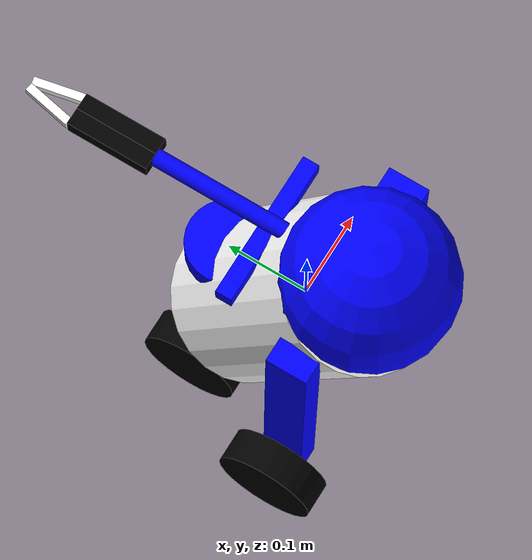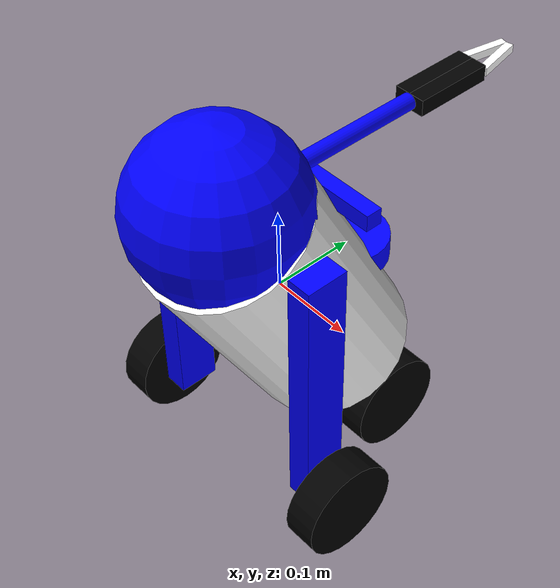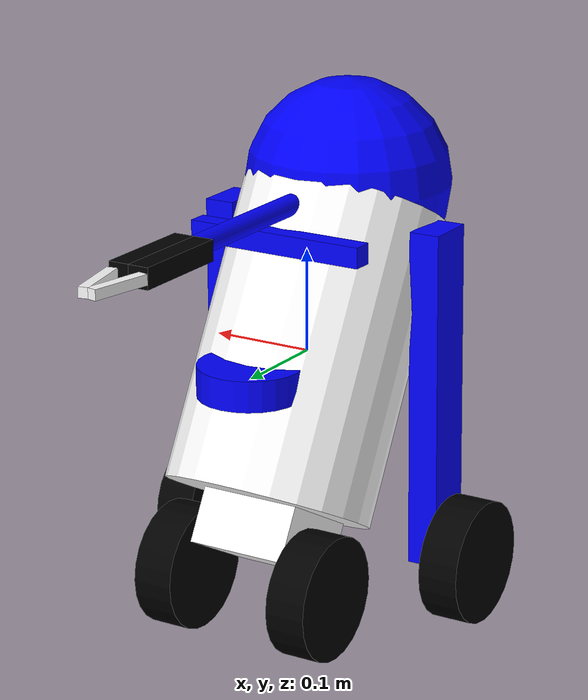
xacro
<?xml version="1.0"?>
<robot xmlns:xacro="http://www.ros.org/wiki/xacro" name="r2d2">

  <!-- Parametrização -->
  <xacro:property name="cylinder_radius" value="0.1"/>
  <xacro:property name="cylinder_length" value="0.3"/>
  <xacro:property name="base_length" value="0.33"/>
  <xacro:property name="base_width"  value="0.05"/>
  <xacro:property name="base_height" value="0.03"/>
  <xacro:property name="sphere_radius" value="0.1"/>
  <xacro:property name="wheel_radius" value="0.06"/>
  <xacro:property name="wheel_length" value="0.04"/>

  <!-- Materiais -->
  <material name="blue">
    <color rgba="0 0 1 1"/>
  </material>

  <material name="white">
    <color rgba="1 1 1 1"/>
  </material>

  <material name="black">
    <color rgba="0 0 0 1"/>
  </material>

  <!-- Definição de algumas propriedades inerciais -->
  <xacro:macro name="box_inertia" params="m w h d">
    <inertial>
      <origin xyz="0 0 0" rpy="${pi/2} 0 ${pi/2}"/>
      <mass value="${m}"/>
      <inertia ixx="${(m/12) * (h*h + d*d)}" ixy="0.0" ixz="0.0" iyy="${(m/12) * (w*w + d*d)}" iyz="0.0" izz="${(m/12) * (w*w + h*h)}"/>
    </inertial>
  </xacro:macro>

  <xacro:macro name="cylinder_inertia" params="m r h">
    <inertial>
      <origin xyz="0 0 0" rpy="${pi/2} 0 0" />
      <mass value="${m}"/>
      <inertia ixx="${(m/12) * (3*r*r + h*h)}" ixy = "0" ixz = "0" iyy="${(m/12) * (3*r*r + h*h)}" iyz = "0" izz="${(m/2) * (r*r)}"/>
    </inertial>
  </xacro:macro>

  <xacro:macro name="sphere_inertia" params="m r">
    <inertial>
      <mass value="${m}"/>
      <inertia ixx="${(2/5) * m * (r*r)}" ixy="0.0" ixz="0.0" iyy="${(2/5) * m * (r*r)}" iyz="0.0" izz="${(2/5) * m * (r*r)}"/>
    </inertial>
  </xacro:macro>

  <!-- Link base -->
  <link name="base_link">
    <visual>
      <geometry>
        <cylinder radius="${cylinder_radius}" length="${cylinder_length}"/>
      </geometry>
      <origin xyz="0 0 0" rpy="0.5 0 0"/>
      <material name="white"/>
    </visual>
    <collision>
      <geometry>
        <cylinder radius="${cylinder_radius}" length="${cylinder_length}"/>
      </geometry>
      <origin xyz="0 0 0" rpy="0.5 0 0"/>
    </collision>

    <xacro:cylinder_inertia m="10" r="${cylinder_radius}" h="${cylinder_length}"/>

  </link>

  <!-- Função para criar pernas -->
  <xacro:macro name="leg_link" params="name pos">
    <link name="${name}">
      <visual>
        <geometry>
          <box size="${base_length} ${base_width} ${base_height}"/>
        </geometry>
        <origin xyz="0 0 0" rpy="0 1.58 0"/>
        <material name="blue"/>
      </visual>
      <collision>
        <geometry>
          <box size="${base_length} ${base_width} ${base_height}"/>
        </geometry>
          <origin xyz="0 0 0" rpy="0 1.58 0"/>
      </collision>

      <xacro:box_inertia m="1" w="${base_width}" d="${base_length}" h="${base_height}"/>

    </link>

    <joint name="base_to_${name}" type="fixed">
      <parent link="base_link"/>
      <child link="${name}"/>
      <origin xyz="${pos}" />
    </joint>
  </xacro:macro>

  <xacro:leg_link name="right_leg" pos="0.113 -0.05 -0.04"/>
  <xacro:leg_link name="left_leg" pos="-0.113 -0.05 -0.04"/>

  <!-- Cabeça -->
  <link name="head">
    <visual>
      <geometry>
        <sphere radius="${sphere_radius}"/>
      </geometry>
      <origin xyz="0.0 0.0 0.01" rpy="0 0 0"/>
      <material name="blue"/>
    </visual>
    <collision>
      <geometry>
        <sphere radius="${sphere_radius}"/>
      </geometry>
      <origin xyz="0.0 0.0 0.01" rpy="0 0 0"/>
    </collision>

    <xacro:sphere_inertia m="2" r="${sphere_radius}"/>

  </link>
  <joint name="base_to_head" type="fixed">
    <parent link="base_link"/>
    <child link="head"/>
    <axis xyz="0 0 1"/>
    <origin xyz="0.0 -0.0765 0.14"/>
  </joint>

  <!-- Base inferior -->
  <link name="base_bottom">
    <visual>
      <geometry>
        <box size="0.1 0.1 0.06"/>
      </geometry>
      <origin xyz="0 0 0" rpy="0.5 0 0"/>
      <material name="white"/>
    </visual>
    <collision>
      <geometry>
        <box size="0.1 0.1 0.06"/>
      </geometry>
      <origin xyz="0 0 0" rpy="0.5 0 0"/>
    </collision>

    <xacro:box_inertia m="10" w="0.1" h="0.1" d="0.06"/>

  </link>
  <joint name="base_to_base_bottom" type="fixed">
    <parent link="base_link"/>
    <child link="base_bottom"/>
    <origin xyz="0 0.07 -0.16"/>
  </joint>

  <!-- Função para rodas -->
  <xacro:macro name="wheel" params="name parent_link pos type">
    <link name="${name}">
      <visual>
        <origin xyz="0 0 0" rpy="0 ${pi/2} 0"/>
        <geometry>
          <cylinder radius="${wheel_radius}" length="${wheel_length}"/>
        </geometry>
        <material name="black"/>
      </visual>

      <collision>
        <origin xyz="0 0 0" rpy="0 ${pi/2} 0"/>
        <geometry>
          <cylinder radius="${wheel_radius}" length="${wheel_length}"/>
        </geometry>
      </collision>

      <xacro:cylinder_inertia m="2.5" r="${wheel_radius}" h="${wheel_length}"/>

    </link>
    <joint name="${parent_link}_to_${name}" type="${type}">
      <parent link="${parent_link}"/>
      <child link="${name}"/>
      <origin xyz="${pos}"/>
      <axis xyz="-1 0 0"/>
      <dynamics damping="0.2"/>
    </joint>

  </xacro:macro>

  <xacro:wheel name="wheel_front_left" parent_link="base_link" pos="-0.073 0.1 -0.2" type = "continuous"/>
  <xacro:wheel name="wheel_front_right" parent_link="base_link" pos="0.073 0.1 -0.2" type = "continuous"/>
  <xacro:wheel name="wheel_back_right" parent_link="base_link" pos="0.15 -0.05 -0.2" type = "continuous"/>
  <xacro:wheel name="wheel_back_left" parent_link="base_link" pos="-0.15 -0.05 -0.2" type = "continuous"/>

  <!-- Garra -->

  <link name="gripper_pole">
    <visual>
      <geometry>
        <cylinder length="0.2" radius="0.01"/>
      </geometry>
      <origin rpy="0 0 0" xyz="0 0 -0.1"/>
      <material name="blue"/>
    </visual>
    <collision>
      <geometry>
        <cylinder length="0.2" radius="0.01"/>
      </geometry>
      <origin rpy="0 0 0" xyz="0 0 -0.1"/>
    </collision>
    <xacro:cylinder_inertia m="0.01" r="0.01" h="0.2"/>
  </link>

  <joint name="gripper_extension" type="revolute">
    <axis xyz="-1 0 0"/>
    <limit effort="50.0" lower="-1.57075" upper="0.5" velocity="0.5"/>
    <origin rpy="${pi/2} 0 0" xyz="0 0.01 0.15"/>
    <parent link="base_link"/>
    <child link="gripper_pole"/>
  </joint>

  <link name="left_gripper">
    <visual>
      <geometry>
        <box size="0.1 0.02 0.02"/> <!-- Comprimento, largura, altura -->
      </geometry>
      <origin rpy="0 0 0" xyz="0 0 0"/>
      <material name="black"/>
    </visual>
    <collision>
      <geometry>
        <box size="0.1 0.02 0.02"/>
      </geometry>
    </collision>

    <xacro:box_inertia m="0.015" w="0.02" h="0.02" d="0.1"/>
  </link>

  <joint name="left_gripper_joint" type="prismatic">
    <axis xyz="0 0 1"/>
    <limit effort="100.0" lower="-0.1" upper="0" velocity="0.25"/>
    <origin xyz="-0.01 0 -0.23" rpy="0 ${pi/2} 0"/>
    <parent link="gripper_pole"/>
    <child link="left_gripper"/>
  </joint>

  <joint name="left_tip_joint" type="fixed">
    <origin rpy="0 -0.2 0" xyz="0.08 0 0"/>
    <parent link="left_gripper"/>
    <child link="left_tip"/>
  </joint>

  <link name="left_tip">
    <visual>
      <geometry>
        <box size="0.06 0.01 0.01"/>
      </geometry>
      <origin rpy="0 0 0" xyz="0 0 0"/>
      <material name="white"/>
    </visual>
    <collision>
      <geometry>
        <box size="0.06 0.01 0.01"/>
      </geometry>
    </collision>

    <xacro:box_inertia m="0.005" w="0.01" h="0.01" d="0.06"/>

  </link>

  <link name="right_gripper">
    <visual>
      <geometry>
        <box size="0.1 0.02 0.02"/>
      </geometry>
      <origin rpy="0 0 0" xyz="0 0 0"/>
      <material name="black"/>
    </visual>
    <collision>
      <geometry>
        <box size="0.1 0.02 0.02"/>
      </geometry>
    </collision>
    <xacro:box_inertia m="0.015" w="0.02" h="0.02" d="0.1"/>
  </link>

  <joint name="right_gripper_joint" type="prismatic">
    <axis xyz="0 0 1"/>
    <limit effort="100.0" lower="0" upper="0.1" velocity="0.25"/>
    <origin rpy="0 ${pi/2} 0" xyz="0.01 0 -0.23"/>
    <parent link="gripper_pole"/>
    <child link="right_gripper"/>
  </joint>

  <link name="right_tip">
    <visual>
      <origin rpy="0 0 0" xyz="0 0 0"/>
      <geometry>
        <box size="0.06 0.01 0.01"/>
      </geometry>
      <material name="white"/>
    </visual>
    <collision>
      <geometry>
        <box size="0.06 0.01 0.01"/>
      </geometry>
    </collision>
    <xacro:box_inertia m="0.005" w="0.01" h="0.01" d="0.06"/>
  </link>

  <joint name="right_tip_joint" type="fixed">
    <origin rpy="0 0.2 0" xyz="0.08 0 0"/>
    <parent link="right_gripper"/>
    <child link="right_tip"/>
  </joint>

<!-- End Robot -->

<!-- IMU -->
<link name="imu_link">
  <visual>
    <geometry>
      <box size="0.05 0.05 0.05"/>
    </geometry>
  </visual>
  <collision>
    <geometry>
      <box size="0.05 0.05 0.05"/>
    </geometry>
  </collision>
  <inertial>
    <origin xyz="0 0 0" rpy="0 0 0"/>
    <mass value="0.1"/>
    <inertia ixx="0.01" ixy="0" ixz="0" iyy="0.01" iyz="0" izz="0.01" />
  </inertial>
</link>

<gazebo reference="imu_link">
    <sensor name="imu_sensor" type="imu">
      <ignition_frame_id>imu_link</ignition_frame_id>
      <plugin filename="ignition-gazebo-imu-system" name="ignition::gazebo::systems::Imu">
      </plugin>

      <topic>imu</topic>
      <always_on>true</always_on>
      <update_rate>50</update_rate>
      <visualize>true</visualize>
      <imu>
        <angular_velocity>
          <x>
            <noise type="gaussian">
              <mean>0.0</mean>
              <stddev>2e-4</stddev>
              <bias_mean>0.0000075</bias_mean>
              <bias_stddev>0.0000008</bias_stddev>
            </noise>
          </x>
          <y>
            <noise type="gaussian">
              <mean>0.0</mean>
              <stddev>2e-4</stddev>
              <bias_mean>0.0000075</bias_mean>
              <bias_stddev>0.0000008</bias_stddev>
            </noise>
          </y>
          <z>
            <noise type="gaussian">
              <mean>0.0</mean>
              <stddev>2e-4</stddev>
              <bias_mean>0.0000075</bias_mean>
              <bias_stddev>0.0000008</bias_stddev>
            </noise>
          </z>
        </angular_velocity>
        <linear_acceleration>
          <x>
            <noise type="gaussian">
              <mean>0.0</mean>
              <stddev>1.7e-2</stddev>
              <bias_mean>0.1</bias_mean>
              <bias_stddev>0.001</bias_stddev>
            </noise>
          </x>
          <y>
            <noise type="gaussian">
              <mean>0.0</mean>
              <stddev>1.7e-2</stddev>
              <bias_mean>0.1</bias_mean>
              <bias_stddev>0.001</bias_stddev>
            </noise>
          </y>
          <z>
            <noise type="gaussian">
              <mean>0.0</mean>
              <stddev>1.7e-2</stddev>
              <bias_mean>0.1</bias_mean>
              <bias_stddev>0.001</bias_stddev>
            </noise>
          </z>
        </linear_acceleration>
      </imu>
    </sensor>
  </gazebo>

<joint name="imu_joint" type="fixed">
  <parent link="base_link"/>
  <child link="imu_link"/>
  <origin xyz="0 0 0.01" rpy="0 0 0"/>
</joint>

<!-- Sistema de controle ROS 2 -->

<ros2_control name="IgnitionSystem" type="system">

  <!-- Seção de hardware do sistema, ponte entre o Gazebo (Ignition) e o ros2_control -->
  <hardware>
    <plugin>ign_ros2_control/IgnitionSystem</plugin>
  </hardware>

  <!-- Definição das rodas -->
  <joint name="base_link_to_wheel_back_right">
    <command_interface name="velocity">
      <param name="min">-1</param>
      <param name="max">1</param>
    </command_interface>
    <state_interface name="position"/>
    <state_interface name="velocity"/>
  </joint>

  <joint name="base_link_to_wheel_back_left">
    <command_interface name="velocity">
      <param name="min">-1</param>
      <param name="max">1</param>
    </command_interface>
    <state_interface name="position"/>
    <state_interface name="velocity"/>
  </joint>

  <joint name="base_link_to_wheel_front_left">
    <command_interface name="velocity">
      <param name="min">-1</param>
      <param name="max">1</param>
    </command_interface>
    <state_interface name="position"/>
    <state_interface name="velocity"/>
  </joint>

  <joint name="base_link_to_wheel_front_right">
    <command_interface name="velocity">
      <param name="min">-1</param>
      <param name="max">1</param>
    </command_interface>
    <state_interface name="position"/>
    <state_interface name="velocity"/>
  </joint>

    <joint name="gripper_extension">
      <command_interface name="position">
        <param name="min">-1.57075</param>
        <param name="max">0.2</param>
      </command_interface>
      <state_interface name="position"/>
      <state_interface name="velocity"/>
    </joint>

    <joint name="left_gripper_joint">
      <command_interface name="position">
        <param name="min">0.0</param>
        <param name="max">0.1</param>
      </command_interface>

      <state_interface name="position"/>
      <state_interface name="velocity"/>
    </joint>

    <joint name="right_gripper_joint">
      <command_interface name="position">
        <param name="min">-0.1</param>
        <param name="max">0.0</param>
      </command_interface>

      <state_interface name="position"/>
      <state_interface name="velocity"/>
    </joint>

</ros2_control>

  <gazebo>
    <plugin filename="ign_ros2_control-system" name="ign_ros2_control::IgnitionROS2ControlPlugin">
      <parameters>$(find prm)/config/controller_config.yaml</parameters>
    </plugin>
  </gazebo>

<!-- Sensores -->

<!-- Sensor Lidar -->
<link name="lidar_link">
  <inertial>
    <origin xyz="0 0 0" rpy="0 0 0"/>
    <mass value="0.125"/>
    <inertia ixx="0.001" ixy="0" ixz="0" iyy="0.001" iyz="0" izz="0.001" />
  </inertial>

  <collision>
    <origin xyz="0 0 0" rpy="0 0 0"/>
    <geometry>
        <cylinder radius="0.05" length="0.03"/>
    </geometry>
  </collision>

  <visual>
    <origin xyz="0 0 0" rpy="0 0 0"/>
    <geometry>
      <cylinder radius="0.05" length="0.03"/>
    </geometry>
    <material name="blue"/>
  </visual>
</link>

<joint name="lidar_joint" type="fixed">
  <parent link="base_link"/>
  <child link="lidar_link"/>
  <origin xyz="0 0.1 0" rpy="0 0 1.57"/>
</joint>

<gazebo reference="lidar_link">
  <sensor name="lidar" type="gpu_lidar">
    <ignition_frame_id>lidar_link</ignition_frame_id>
    <topic>scan</topic>
    <always_on>true</always_on>
    <visualize>true</visualize>
    <update_rate>10</update_rate>
    <ray>
      <scan>
          <horizontal>
            <samples>360</samples>
            <resolution>1.000000</resolution>
            <min_angle>0.000000</min_angle>
            <max_angle>6.280000</max_angle>
          </horizontal>
      </scan>
      <range>
          <min>0.120000</min>
          <max>3.5</max>
          <resolution>0.015000</resolution>
      </range>
      <noise>
          <type>gaussian</type>
          <mean>0.0</mean>
          <stddev>0.01</stddev>
      </noise>
    </ray>
  </sensor>
</gazebo>

<!-- Camera -->
<link name="camera_link">
  <visual>
    <geometry>
      <box size="0.02 0.18 0.02"/>
    </geometry>
    <material name="blue"/>
  </visual>
  <collision>
    <geometry>
      <box size="0.02 0.18 0.02"/>
    </geometry>
  </collision>

  <inertial>
    <origin xyz="0 0 0" rpy="0 0 0"/>
    <mass value="0.035"/>
    <inertia ixx="0.001" ixy="0" ixz="0" iyy="0.001" iyz="0" izz="0.001" />
  </inertial>
</link>

<joint name="camera_joint" type="fixed">
  <parent link="base_link"/>
  <child link="camera_link"/>
  <origin xyz="0 0.05 0.12" rpy="0 0 1.57"/>
</joint>

<gazebo reference="camera_link">
    <sensor name="robot_cam" type="segmentation">
      <topic>robot_cam</topic>
      <camera>
        <segmentation_type>semantic</segmentation_type>
        <horizontal_fov>1.57</horizontal_fov>
        <image>
          <width>320</width>
          <height>240</height>
        </image>
        <clip>
          <near>0.1</near>
          <far>100</far>
        </clip>
      </camera>
      <always_on>1</always_on>
      <update_rate>15</update_rate>
      <visualize>true</visualize>
    </sensor>
</gazebo>

  <gazebo>
    <plugin filename="libignition-gazebo-pose-publisher-system" name="ignition::gazebo::systems::PosePublisher">
      <publish_link_pose>false</publish_link_pose>
      <publish_model_pose>true</publish_model_pose>
      <publish_nested_model_pose>true</publish_nested_model_pose>
      <use_pose_vector_msg>false</use_pose_vector_msg>
      <publish_visual_pose>false</publish_visual_pose>
      <update_frequency>10</update_frequency>
    </plugin>
  </gazebo>

</robot>
